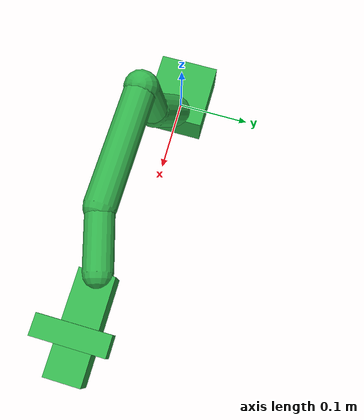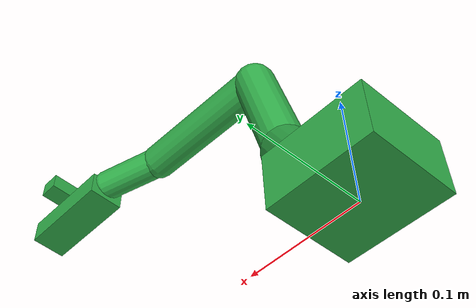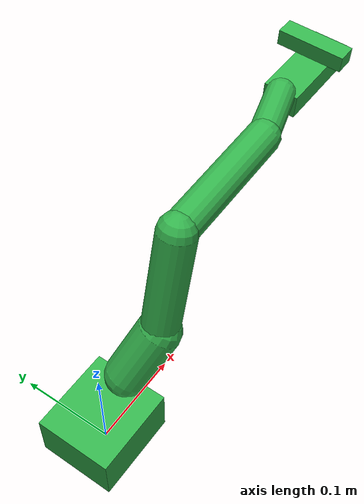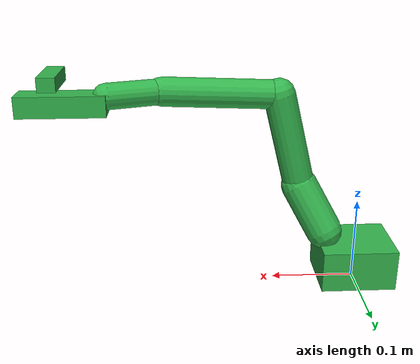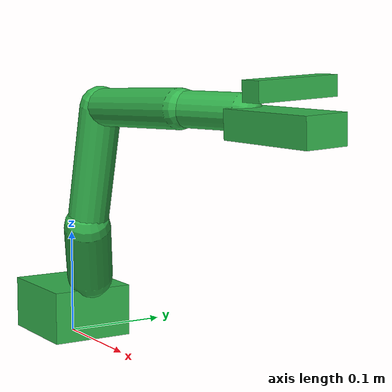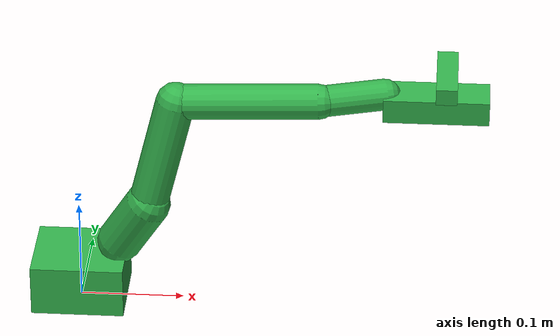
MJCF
<mujoco model="so101_kinematic">
  <compiler angle="radian" autolimits="true"/>
  <option timestep="0.005" gravity="0 0 0" integrator="implicitfast"/>
  <default>
    <joint damping="0.6" armature="0.02"/>
    <geom density="400" rgba="0.2 0.7 0.3 0.9" contype="0" conaffinity="0"/>
    <position kp="80" kv="4"/>
  </default>
  <worldbody>
    <body name="base">
      <geom type="box" size="0.045 0.04 0.025" pos="0 0 0.025"/>
      <body name="shoulder" pos="0.0388353 0 0.0624" quat="0 0 -1 0">
        <joint name="shoulder_pan" type="hinge" axis="0 0 1" range="-1.91986 1.91986"/>
        <geom type="capsule" size="0.022" fromto="0 0 0 -0.0303992 -0.0182778 -0.0542"/>
        <body name="upper_arm" pos="-0.0303992 -0.0182778 -0.0542" quat="1 -1 -1 -1">
          <joint name="shoulder_lift" type="hinge" axis="0 0 1" range="-1.7453293 1.7453293"/>
          <geom type="capsule" size="0.019" fromto="0 0 0 -0.11257 -0.028 0"/>
          <body name="lower_arm" pos="-0.11257 -0.028 0" quat="1 0 0 1">
            <joint name="elbow_flex" type="hinge" axis="0 0 1" range="-1.69 1.69"/>
            <geom type="capsule" size="0.017" fromto="0 0 0 -0.1349 0.0052 0"/>
            <body name="wrist" pos="-0.1349 0.0052 0" quat="1 0 0 -1">
              <joint name="wrist_flex" type="hinge" axis="0 0 1" range="-1.658063 1.658063"/>
              <geom type="capsule" size="0.015" fromto="0 0 0 0 -0.0611 0.0181"/>
              <body name="gripper" pos="0 -0.0611 0.0181" quat="0.0172091 -0.0172091 0.706897 0.706897">
                <joint name="wrist_roll" type="hinge" axis="0 0 1" range="-2.7438473 2.84121"/>
                <geom type="box" size="0.012 0.018 0.05" pos="-0.0079 -0.000218121 -0.0490637"/>
                <body name="moving_jaw" pos="0.0202 0.0188 -0.0234" quat="1 1 0 0">
                  <joint name="gripper_joint" type="hinge" axis="0 0 1" range="-0.174533 1.7453292"/>
                  <geom type="box" size="0.008 0.01 0.035" pos="0 -0.035 0.0189"/>
                </body>
              </body>
            </body>
          </body>
        </body>
      </body>
    </body>
  </worldbody>
  <actuator>
    <position name="shoulder_pan" joint="shoulder_pan" ctrlrange="-1.91986 1.91986"/>
    <position name="shoulder_lift" joint="shoulder_lift" ctrlrange="-1.7453293 1.7453293"/>
    <position name="elbow_flex" joint="elbow_flex" ctrlrange="-1.69 1.69"/>
    <position name="wrist_flex" joint="wrist_flex" ctrlrange="-1.658063 1.658063"/>
    <position name="wrist_roll" joint="wrist_roll" ctrlrange="-2.7438473 2.84121"/>
    <position name="gripper" joint="gripper_joint" ctrlrange="-0.174533 1.7453292"/>
  </actuator>
</mujoco>
